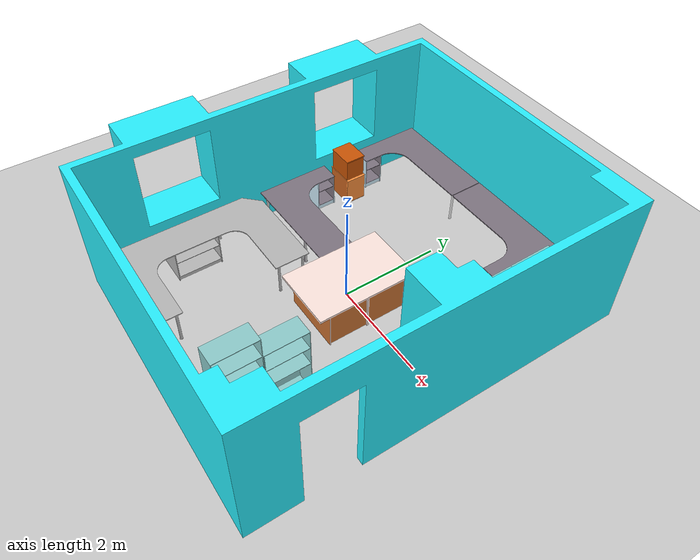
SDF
<sdf version="1.6">
 <world name="default">
  <light name="sun" type="directional">
   <pose>0 0 10 0 -0 0</pose>
   <diffuse>0.8 0.8 0.8 1</diffuse>
   <specular>0.2 0.2 0.2 1</specular>
   <attenuation>
    <range>1000</range>
    <constant>0.9</constant>
    <linear>0.01</linear>
    <quadratic>0.001</quadratic>
   </attenuation>
   <direction>-0.5 0.1 -0.9</direction>
  </light>
  <model name="ground_plane">
   <static>1</static>
   <link name="link">
    <collision name="collision">
     <geometry><plane><normal>0 0 1</normal><size>100 100</size></plane></geometry>
     <surface><friction><ode><mu>100</mu><mu2>50</mu2></ode></friction></surface>
    </collision>
    <visual name="visual">
     <cast_shadows>0</cast_shadows>
     <geometry><plane><normal>0 0 1</normal><size>100 100</size></plane></geometry>
     <material>
      <script><uri>file://media/materials/scripts/gazebo.material</uri><name>Gazebo/Grey</name></script>
     </material>
    </visual>
   </link>
  </model>
  <gravity>0 0 -9.8</gravity>
  <magnetic_field>6e-06 2.3e-05 -4.2e-05</magnetic_field>
  <atmosphere type="adiabatic"/>
  <physics name="default_physics" default="0" type="ode">
   <max_step_size>0.001</max_step_size>
   <real_time_factor>1</real_time_factor>
   <real_time_update_rate>1000</real_time_update_rate>
  </physics>
  <scene><ambient>0.4 0.4 0.4 1</ambient><background>0.7 0.7 0.7 1</background><shadows>1</shadows></scene>
  <spherical_coordinates>
   <surface_model>EARTH_WGS84</surface_model>
   <latitude_deg>0</latitude_deg>
   <longitude_deg>0</longitude_deg>
   <elevation>0</elevation>
   <heading_deg>0</heading_deg>
  </spherical_coordinates>
  <model name="Robotics_room">
   <link name="Robotics_room">
    <inertial>
     <pose>0.003105 -0.062225 1.2969 0 -0 0</pose>
     <mass>15710</mass>
     <inertia>
      <ixx>122580</ixx>
      <ixy>2047.8</ixy>
      <ixz>-4128</ixz>
      <iyy>111680</iyy>
      <iyz>-272.43</iyz>
      <izz>212140</izz>
     </inertia>
    </inertial>
    <collision name="Robotics_room_collision">
     <pose>0 0 0 1.5708 -0 0</pose>
     <geometry>
      <mesh><scale>1 1 1</scale><uri>model://Robotics_room/meshes/Robotics_room.dae</uri></mesh>
     </geometry>
    </collision>
    <visual name="Robotics_room_visual">
     <pose>0 0 0 1.5708 -0 0</pose>
     <geometry>
      <mesh><scale>1 1 1</scale><uri>model://Robotics_room/meshes/Robotics_room.dae</uri></mesh>
     </geometry>
    </visual>
   </link>
   <pose>0.073592 -0.026069 0.01 -4e-06 -0 -0.009118</pose>
  </model>
  <model name="Shelf_2_FL">
   <link name="Shelf_2_FL">
    <inertial>
     <pose>0.399 0.14621 0.79058 0 -0 0</pose>
     <mass>36.829</mass>
     <inertia>
      <ixx>10.258</ixx>
      <ixy>4.9197e-06</ixy>
      <ixz>7.9701e-06</ixz>
      <iyy>13.096</iyy>
      <iyz>0.53149</iyz>
      <izz>3.9755</izz>
     </inertia>
    </inertial>
    <collision name="Shelf_2_FL_collision">
     <pose>0 0 0 1.5708 -0 0</pose>
     <geometry><mesh><scale>1 1 1</scale><uri>model://Shelf_2_FL/meshes/Shelf_2_FL.dae</uri></mesh></geometry>
    </collision>
    <visual name="Shelf_2_FL_visual">
     <pose>0 0 0 1.5708 -0 0</pose>
     <geometry><mesh><scale>1 1 1</scale><uri>model://Shelf_2_FL/meshes/Shelf_2_FL.dae</uri></mesh></geometry>
    </visual>
   </link>
   <pose>1.11497 -1.667 -1e-06 -4e-06 1e-06 -1.57</pose>
  </model>
  <model name="Shelf_FL">
   <link name="Shelf_FL">
    <inertial>
     <pose>0.398 0.18108 0.82092 0 -0 0</pose>
     <mass>33.816</mass>
     <inertia>
      <ixx>9.7591</ixx>
      <ixy>1.4536e-16</ixy>
      <ixz>-3.7964e-15</ixz>
      <iyy>12.571</iyy>
      <iyz>0.18041</iyz>
      <izz>3.6409</izz>
     </inertia>
    </inertial>
    <collision name="Shelf_FL_collision">
     <pose>0 0 0 1.5708 -0 0</pose>
     <geometry><mesh><scale>1 1 1</scale><uri>model://Shelf_FL/meshes/Shelf_FL.dae</uri></mesh></geometry>
    </collision>
    <visual name="Shelf_FL_visual">
     <pose>0 0 0 1.5708 -0 0</pose>
     <geometry><mesh><scale>1 1 1</scale><uri>model://Shelf_FL/meshes/Shelf_FL.dae</uri></mesh></geometry>
    </visual>
   </link>
   <pose>2.37298 3.027 1e-06 -6e-06 1e-06 -1.5651</pose>
  </model>
  <model name="Shelf_FR">
   <link name="Shelf_FR">
    <inertial>
     <pose>0.19929 0.15638 0.79121 0 -0 0</pose>
     <mass>26.028</mass>
     <inertia>
      <ixx>7.1088</ixx>
      <ixy>0.00022715</ixy>
      <ixz>0.00034822</ixz>
      <iyy>7.4164</iyy>
      <iyz>0.30495</iyz>
      <izz>1.0756</izz>
     </inertia>
    </inertial>
    <collision name="Shelf_FR_collision">
     <pose>0 0 0 1.5708 -0 0</pose>
     <geometry><mesh><scale>1 1 1</scale><uri>model://Shelf_FR/meshes/Shelf_FR.dae</uri></mesh></geometry>
    </collision>
    <visual name="Shelf_FR_visual">
     <pose>0 0 0 1.5708 -0 0</pose>
     <geometry><mesh><scale>1 1 1</scale><uri>model://Shelf_FR/meshes/Shelf_FR.dae</uri></mesh></geometry>
    </visual>
   </link>
   <pose>1.9829 0.654894 0 -4e-06 -0 -1.57432</pose>
  </model>
  <model name="Shelf_ML">
   <link name="Shelf_ML">
    <inertial>
     <pose>0.398 0.1831 1.0191 0 -0 0</pose>
     <mass>47.731</mass>
     <inertia>
      <ixx>18.507</ixx>
      <ixy>1.2585e-15</ixy>
      <ixz>2.6751e-15</ixz>
      <iyy>22.206</iyy>
      <iyz>0.22676</iyz>
      <izz>4.8568</izz>
     </inertia>
    </inertial>
    <collision name="Shelf_ML_collision">
     <pose>0 0 0 1.5708 -0 0</pose>
     <geometry><mesh><scale>1 1 1</scale><uri>model://Shelf_ML/meshes/Shelf_ML.dae</uri></mesh></geometry>
    </collision>
    <visual name="Shelf_ML_visual">
     <pose>0 0 0 1.5708 -0 0</pose>
     <geometry><mesh><scale>1 1 1</scale><uri>model://Shelf_ML/meshes/Shelf_ML.dae</uri></mesh></geometry>
    </visual>
   </link>
   <pose>2.37616 2.22528 -1e-06 -5e-06 0 -1.57046</pose>
  </model>
  <model name="Shelf_MR">
   <link name="Shelf_MR">
    <inertial>
     <pose>0.398 0.18355 1.0642 0 -0 0</pose>
     <mass>49.38</mass>
     <inertia>
      <ixx>18.905</ixx>
      <ixy>5.824e-16</ixy>
      <ixz>1.2904e-14</ixz>
      <iyy>22.667</iyy>
      <iyz>0.22359</iyz>
      <izz>4.9572</izz>
     </inertia>
    </inertial>
    <collision name="Shelf_MR_collision">
     <pose>0 0 0 1.5708 -0 0</pose>
     <geometry><mesh><scale>1 1 1</scale><uri>model://Shelf_MR/meshes/Shelf_MR.dae</uri></mesh></geometry>
    </collision>
    <visual name="Shelf_MR_visual">
     <pose>0 0 0 1.5708 -0 0</pose>
     <geometry><mesh><scale>1 1 1</scale><uri>model://Shelf_MR/meshes/Shelf_MR.dae</uri></mesh></geometry>
    </visual>
   </link>
   <pose>2.37641 1.42495 -3e-06 -3e-06 -4e-06 -1.57099</pose>
  </model>
  <model name="Shelf_2_FR">
   <link name="Shelf_2_FR">
    <inertial>
     <pose>0.399 0.18522 0.96951 0 -0 0</pose>
     <mass>43.612</mass>
     <inertia>
      <ixx>18.296</ixx>
      <ixy>1.6757e-15</ixy>
      <ixz>-1.9427e-14</ixz>
      <iyy>21.874</iyy>
      <iyz>0.11138</iyz>
      <izz>4.6243</izz>
     </inertia>
    </inertial>
    <collision name="Shelf_2_FR_collision">
     <pose>0 0 0 1.5708 -0 0</pose>
     <geometry><mesh><scale>1 1 1</scale><uri>model://Shelf_2_FR/meshes/Shelf_2_FR.dae</uri></mesh></geometry>
    </collision>
    <visual name="Shelf_2_FR_visual">
     <pose>0 0 0 1.5708 -0 0</pose>
     <geometry><mesh><scale>1 1 1</scale><uri>model://Shelf_2_FR/meshes/Shelf_2_FR.dae</uri></mesh></geometry>
    </visual>
   </link>
   <pose>1.11346 -2.4723 -8e-06 -4e-06 -0 -1.56922</pose>
  </model>
  <model name="Table_0">
   <link name="Table">
    <inertial>
     <pose>0 -0 0.40389 0 -0 0</pose>
     <mass>1464.6</mass>
     <inertia>
      <ixx>402.61</ixx>
      <ixy>3.4365e-14</ixy>
      <ixz>-1.3974e-14</ixz>
      <iyy>239.46</iyy>
      <iyz>2.4428e-14</iyz>
      <izz>483.74</izz>
     </inertia>
    </inertial>
    <collision name="Table_collision">
     <pose>0 0 0 1.5708 -0 0</pose>
     <geometry><mesh><scale>1 1 1</scale><uri>model://Table/meshes/Table_new.dae</uri></mesh></geometry>
    </collision>
    <visual name="Table_visual">
     <pose>0 0 0 1.5708 -0 0</pose>
     <geometry><mesh><scale>1 1 1</scale><uri>model://Table/meshes/Table_new.dae</uri></mesh></geometry>
    </visual>
   </link>
   <pose>0.214807 -0.09194 0 -4e-06 -0 -3.14097</pose>
  </model>
  <model name="Assem_long">
   <link name="Assem_long">
    <inertial>
     <pose>-0.055611 0.058011 0.24973 0 -0 0</pose>
     <mass>191.42</mass>
     <inertia>
      <ixx>34.827</ixx>
      <ixy>8.7757e-16</ixy>
      <ixz>-2.5068e-15</ixz>
      <iyy>39.739</iyy>
      <iyz>0.24573</iyz>
      <izz>23.642</izz>
     </inertia>
    </inertial>
    <collision name="Assem_long_collision">
     <geometry><mesh><scale>1 1 1</scale><uri>model://Assem_long/meshes/Assem_long.STL</uri></mesh></geometry>
    </collision>
    <visual name="Assem_long_visual">
     <geometry><mesh><scale>1 1 1</scale><uri>model://Assem_long/meshes/Assem_long.STL</uri></mesh></geometry>
    </visual>
   </link>
   <pose>-2.36453 -1.90232 0.375776 -4e-06 -1e-06 1.5713</pose>
  </model>
  <model name="Desk_1_FL">
   <link name="Desk_1_FL">
    <inertial>
     <pose>-0.36701 -0.35406 -0.14663 0 -0 0</pose>
     <mass>61.693</mass>
     <inertia>
      <ixx>17.631</ixx>
      <ixy>-12.318</ixy>
      <ixz>-2.627</ixz>
      <iyy>33.311</iyy>
      <iyz>2.8376</iyz>
      <izz>45.139</izz>
     </inertia>
    </inertial>
    <collision name="Desk_1_FL_collision">
     <pose>0 0 0 1.5708 -0 0</pose>
     <geometry><mesh><scale>1 1 1</scale><uri>model://Desk_1_FL/meshes/Desk_1_FL.dae</uri></mesh></geometry>
    </collision>
    <visual name="Desk_1_FL_visual">
     <pose>0 0 0 1.5708 -0 0</pose>
     <geometry><mesh><scale>1 1 1</scale><uri>model://Desk_1_FL/meshes/Desk_1_FL.dae</uri></mesh></geometry>
    </visual>
   </link>
   <pose>-1.54431 3.15113 0.717997 -5e-06 4e-06 1.6e-05</pose>
  </model>
  <model name="Desk_1_FR">
   <link name="Desk_1_FR">
    <inertial>
     <pose>0.39531 -0.35406 -0.14663 0 -0 0</pose>
     <mass>61.693</mass>
     <inertia>
      <ixx>17.631</ixx>
      <ixy>12.655</ixy>
      <ixz>3.0172</ixz>
      <iyy>31.98</iyy>
      <iyz>2.8376</iyz>
      <izz>43.808</izz>
     </inertia>
    </inertial>
    <collision name="Desk_1_FR_collision">
     <pose>0 0 0 1.5708 -0 0</pose>
     <geometry><mesh><scale>1 1 1</scale><uri>model://Desk_1_FR/meshes/Desk_1_FR.dae</uri></mesh></geometry>
    </collision>
    <visual name="Desk_1_FR_visual">
     <pose>0 0 0 1.5708 -0 0</pose>
     <geometry><mesh><scale>1 1 1</scale><uri>model://Desk_1_FR/meshes/Desk_1_FR.dae</uri></mesh></geometry>
    </visual>
   </link>
   <pose>0.661236 3.15101 0.718 -4e-06 0 -0.002048</pose>
  </model>
  <model name="Drawer_Light_Brown">
   <link name="Drawer_Light_Brown">
    <inertial>
     <pose>-0 -0.008544 0.2875 0 -0 0</pose>
     <mass>45</mass>
     <inertia>
      <ixx>8.159</ixx>
      <ixy>1.9709e-17</ixy>
      <ixz>-7.5566e-17</ixz>
      <iyy>6.0744</iyy>
      <iyz>-8.4879e-05</iyz>
      <izz>6.3113</izz>
     </inertia>
    </inertial>
    <collision name="Drawer_Light_Brown_collision">
     <pose>0 0 0 1.5708 -0 0</pose>
     <geometry>
      <mesh><scale>1 1 1</scale><uri>model://Drawer_Light_Brown/meshes/Drawer_Light_Brown_new.dae</uri></mesh>
     </geometry>
    </collision>
    <visual name="Drawer_Light_Brown_visual">
     <pose>0 0 0 1.5708 -0 0</pose>
     <geometry>
      <mesh><scale>1 1 1</scale><uri>model://Drawer_Light_Brown/meshes/Drawer_Light_Brown_new.dae</uri></mesh>
     </geometry>
    </visual>
   </link>
   <pose>-2.35006 1.63575 -1.8e-05 -4e-06 -0 1.56868</pose>
  </model>
  <model name="Desk_1_FR_0">
   <link name="Desk_1_FR">
    <inertial>
     <pose>0.39531 -0.35406 -0.14663 0 -0 0</pose>
     <mass>61.693</mass>
     <inertia>
      <ixx>17.631</ixx>
      <ixy>12.655</ixy>
      <ixz>3.0172</ixz>
      <iyy>31.98</iyy>
      <iyz>2.8376</iyz>
      <izz>43.808</izz>
     </inertia>
    </inertial>
    <collision name="Desk_1_FR_collision">
     <pose>0 0 0 1.5708 -0 0</pose>
     <geometry><mesh><scale>1 1 1</scale><uri>model://Desk_1_FR/meshes/Desk_1_FR.dae</uri></mesh></geometry>
    </collision>
    <visual name="Desk_1_FR_visual">
     <pose>0 0 0 1.5708 -0 0</pose>
     <geometry><mesh><scale>1 1 1</scale><uri>model://Desk_1_FR/meshes/Desk_1_FR.dae</uri></mesh></geometry>
    </visual>
   </link>
   <pose>-1.50652 0.075262 0.718 -4e-06 0 -3.13619</pose>
  </model>
  <model name="Drawer_On_Top">
   <link name="Drawer_On_Top">
    <inertial>
     <pose>-0 -0.007675 0.23518 0 -0 0</pose>
     <mass>35</mass>
     <inertia>
      <ixx>3.9466</ixx>
      <ixy>1.5446e-16</ixy>
      <ixz>-1.3928e-16</ixz>
      <iyy>3.104</iyy>
      <iyz>0.01977</iyz>
      <izz>3.4589</izz>
     </inertia>
    </inertial>
    <collision name="Drawer_On_Top_collision">
     <pose>0 0 0 1.5708 -0 0</pose>
     <geometry>
      <mesh><scale>1 1 1</scale><uri>model://Drawer_On_Top/meshes/Drawer_On_Top.dae</uri></mesh>
     </geometry>
    </collision>
    <visual name="Drawer_On_Top_visual">
     <pose>0 0 0 1.5708 -0 0</pose>
     <geometry>
      <mesh><scale>1 1 1</scale><uri>model://Drawer_On_Top/meshes/Drawer_On_Top.dae</uri></mesh>
     </geometry>
    </visual>
   </link>
   <pose>-2.35007 1.63573 0.574982 -4e-06 -0 1.57051</pose>
  </model>
 </world>
</sdf>
